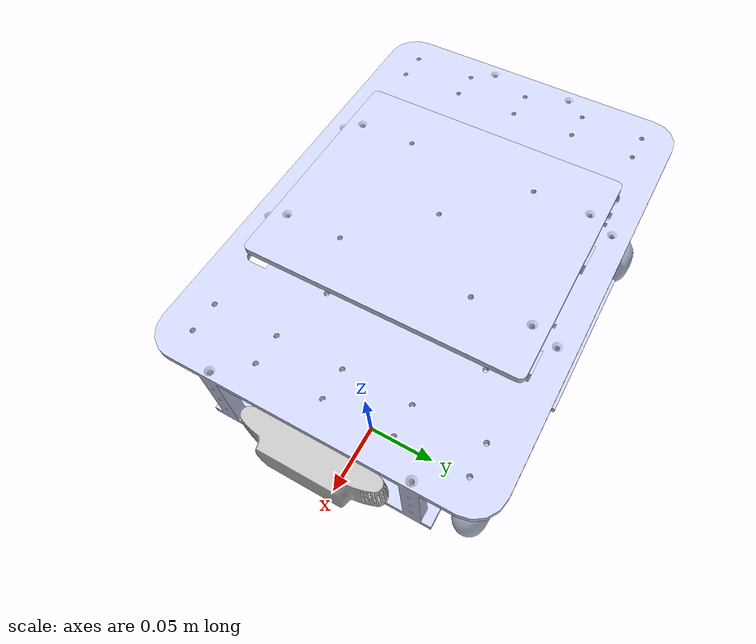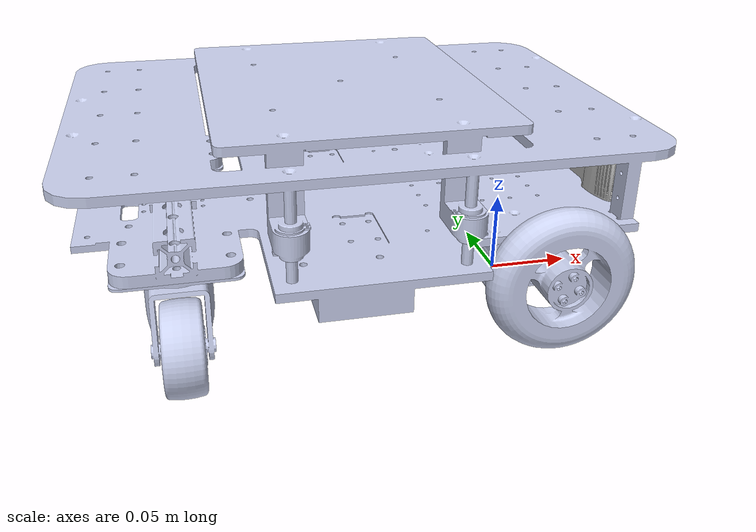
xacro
<?xml version="1.0"?>
<robot name="dobby" xmlns:xacro="http://ros.org/wiki/xacro">

  <link name="base_footprint"></link>

  <joint name="base_link_joint" type="fixed">
    <origin xyz="-0.0859728751611104 0 0.0586" rpy="0 0 0" />
    <parent link="base_footprint" />
    <child link="base_link" />
  </joint>

  <link name="base_link">
    <inertial>
      <origin
        xyz="-0.02179 -0.00025334 0.018793"
        rpy="0 0 0" />
      <mass value="3" />
      <inertia
        ixx="0.0020349"
        ixy="-2.65E-07"
        ixz="7.917E-08"
        iyy="0.0038398"
        iyz="-1.6854E-06"
        izz="0.0057845" />
    </inertial>
    <visual>
      <origin xyz="0 0 0" rpy="0 0 0" />
      <geometry>
        <mesh filename="file://$(find dobby_description)/meshes/base_link.STL" />
      </geometry>
      <material name="">
        <color rgba="0.79216 0.81961 0.93333 1" />
      </material>
    </visual>
    <collision>
      <origin xyz="0 0 0" rpy="0 0 0" />
      <geometry>
        <mesh filename="file://$(find dobby_description)/meshes/base_link.STL" />
      </geometry>
    </collision>
  </link>

  <link name="wheel_left_link">
    <inertial>
      <origin xyz="-2.5698E-09 -0.18478 -4.0976E-09" rpy="0 0 0" />
      <mass value="0.078506" />
      <inertia
        ixx="4.0395E-05"
        ixy="-1.4801E-12"
        ixz="5.0607E-13"
        iyy="7.609E-05"
        iyz="-1.637E-13"
        izz="4.0395E-05" />
      </inertial>
    <visual>
      <origin xyz="0 0 0" rpy="0 0 0" />
      <geometry>
        <mesh filename="file://$(find dobby_description)/meshes/wheel_left_link.STL" />
      </geometry>
      <material name="">
        <color rgba="0.79216 0.81961 0.93333 1" />
      </material>
    </visual>
    <collision>
      <origin xyz="0 0 0" rpy="0 0 0" />
      <geometry>
        <mesh filename="file://$(find dobby_description)/meshes/wheel_left_link.STL" />
      </geometry>
    </collision>
  </link>

  <joint name="wheel_left_joint" type="continuous">
    <origin xyz="0.0859728751611104 0.0924992326649866 -0.01635" rpy="0 0 0" />
    <parent link="base_link" />
    <child link="wheel_left_link" />
    <axis xyz="0 1 0" />
  </joint>

  <link name="wheel_right_link">
    <inertial>
      <origin xyz="1.1727E-09 0.18477 4.7533E-09" rpy="0 0 0" />
      <mass value="0.07756" />
      <inertia
        ixx="4.0323E-05"
        ixy="9.1137E-13"
        ixz="5.6284E-12"
        iyy="7.6088E-05"
        iyz="-1.1777E-12"
        izz="4.0323E-05" />
    </inertial>
    <visual>
      <origin xyz="0 0 0" rpy="0 0 0" />
      <geometry>
        <mesh filename="file://$(find dobby_description)/meshes/wheel_right_link.STL" />
      </geometry>
      <material name="">
        <color rgba="0.79216 0.81961 0.93333 1" />
      </material>
    </visual>
    <collision>
      <origin xyz="0 0 0" rpy="0 0 0" />
      <geometry>
        <mesh filename="file://$(find dobby_description)/meshes/wheel_right_link.STL" />
      </geometry>
    </collision>
  </link>

  <joint name="wheel_right_joint" type="continuous">
    <origin xyz="0.0859728751611104 -0.0926007673350134 -0.01635" rpy="0 0 0" />
    <parent link="base_link" />
    <child link="wheel_right_link" />
    <axis xyz="0 1 0" />
  </joint>

  <link name="caster_left_link">
    <inertial>
      <origin xyz="8.5537E-09 -0.0050667 0.0087941" rpy="0 0 0" />
      <mass value="0.058419" />
      <inertia
        ixx="1.8183E-05"
        ixy="-1.668E-12"
        ixz="3.7422E-12"
        iyy="1.3635E-05"
        iyz="1.4907E-06"
        izz="1.3362E-05" />
    </inertial>
    <visual>
      <origin xyz="0 0 0" rpy="0 0 0" />
      <geometry>
        <mesh filename="file://$(find dobby_description)/meshes/caster_left_link.STL" />
      </geometry>
      <material name="">
        <color rgba="0.79216 0.81961 0.93333 1" />
      </material>
    </visual>
    <collision>
      <origin xyz="0 0 0" rpy="0 0 0" />
      <geometry>
        <mesh filename="file://$(find dobby_description)/meshes/caster_left_link.STL" />
      </geometry>
    </collision>
  </link>

  <joint name="caster_left_joint" type="fixed">
    <origin xyz="-0.11688712483889 0.0912692326649866 -0.0332" rpy="0 0 0" />
    <parent link="base_link" />
    <child link="caster_left_link" />
    <axis xyz="0 0 0" />
  </joint>

  <link name="caster_right_link">
    <inertial>
      <origin xyz="0.016129 0.0050667 0.0087941" rpy="0 0 0" />
      <mass value="0.058419" />
      <inertia
        ixx="1.8183E-05"
        ixy="-1.668E-12"
        ixz="-3.7422E-12"
        iyy="1.3635E-05"
        iyz="-1.4907E-06"
        izz="1.3362E-05" />
    </inertial>
    <visual>
      <origin xyz="0 0 0" rpy="0 0 0" />
      <geometry>
        <mesh filename="file://$(find dobby_description)/meshes/caster_right_link.STL" />
      </geometry>
      <material name="">
        <color rgba="0.79216 0.81961 0.93333 1" />
      </material>
    </visual>
    <collision>
      <origin xyz="0 0 0" rpy="0 0 0" />
      <geometry>
        <mesh filename="file://$(find dobby_description)/meshes/caster_right_link.STL" />
      </geometry>
    </collision>
  </link>

  <joint name="caster_right_joint" type="fixed">
    <origin xyz="-0.13301612483889 -0.0913707673350134 -0.0332" rpy="0 0 0" />
    <parent link="base_link" />
    <child link="caster_right_link" />
    <axis xyz="0 0 0" />
  </joint>

  <link name="lift_link">
    <inertial>
      <origin xyz="9.6601E-08 1.6507E-18 -0.0045927" rpy="0 0 0" />
      <mass value="10" />
      <inertia
        ixx="0.00043238"
        ixy="7.3387E-20"
        ixz="-1.2294E-21"
        iyy="0.00031087"
        iyz="6.2072E-22"
        izz="0.00073501" />
    </inertial>
    <visual>
      <origin xyz="0 0 0" rpy="0 0 0" />
      <geometry>
        <mesh filename="file://$(find dobby_description)/meshes/lift_link.STL" />
      </geometry>
      <material name="">
        <color rgba="0.79216 0.81961 0.93333 1" />
      </material>
    </visual>
    <collision>
      <origin xyz="0 0 0" rpy="0 0 0" />
      <geometry>
        <mesh filename="file://$(find dobby_description)/meshes/lift_link.STL" />
      </geometry>
    </collision>
  </link>

  <joint name="lift_joint" type="prismatic">
    <origin xyz="-0.0168871248388896 -5.07673350133662E-05 0.069489457406549" rpy="0 0 0" />
    <parent link="base_link" />
    <child link="lift_link" />
    <axis xyz="0 0 1" />
    <limit lower="0" upper="0.02" effort="1000" velocity="0.05" />
  </joint>

  <link name="lidar_link">
    <inertial>
      <origin xyz="0.0012332 0.00013829 -0.010655" rpy="0 0 0" />
      <mass value="0.18368" />
      <inertia
        ixx="6.732E-05"
        ixy="3.5606E-07"
        ixz="1.6764E-08"
        iyy="6.7746E-05"
        iyz="2.9724E-08"
        izz="0.000122" />
    </inertial>
    <visual>`
      <origin xyz="0 0 0" rpy="0 0 0" />
      <geometry>
        <mesh filename="file://$(find dobby_description)/meshes/lidar_link.STL" />
      </geometry>
      <material name="">
        <color rgba="0.75294 0.75294 0.75294 1" />
      </material>
    </visual>
    <collision>
      <origin xyz="0 0 0" rpy="0 0 0" />
      <geometry>
        <mesh filename="file://$(find dobby_description)/meshes/lidar_link.STL" />
      </geometry>
    </collision>
  </link>

  <joint name="lidar_joint" type="fixed">
    <origin xyz="0.0841672913168166 -0.000352355651321994 -0.0378418986893078" rpy="3.1415926536 0 3.1415926536" />
    <parent link="base_link" />
    <child link="lidar_link" />
    <axis xyz="0 0 0" />
  </joint>

  <link name="camera_link">
    <inertial>
        <origin xyz="-0.010253 -2.6267E-06 0.001282" rpy="0 0 0" />
        <mass value="0.061453" />
        <inertia
        ixx="3.3156E-05"
        ixy="-1.4254E-09"
        ixz="3.0461E-08"
        iyy="6.0448E-06"
        iyz="-1.2401E-09"
        izz="3.1071E-05" />
    </inertial>
    <visual>
        <origin xyz="0 0 0" rpy="0 0 0" />
        <geometry>
        <mesh filename="file://$(find dobby_description)/meshes/camera_link.STL" />
        </geometry>
        <material name="">
        <color rgba="0.75294 0.75294 0.75294 1" />
        </material>
    </visual>
    <collision>
        <origin xyz="0 0 0" rpy="0 0 0" />
        <geometry>
        <mesh filename="file://$(find dobby_description)/meshes/camera_link.STL" />
        </geometry>
    </collision>
  </link>

  <joint name="camera_joint" type="fixed">
    <origin xyz="0.15141287516111 -0.000212126723628815 0.02" rpy="0 0 0" />
    <parent link="base_link" />
    <child link="camera_link" />
    <axis xyz="0 0 0" />
  </joint>

</robot>
